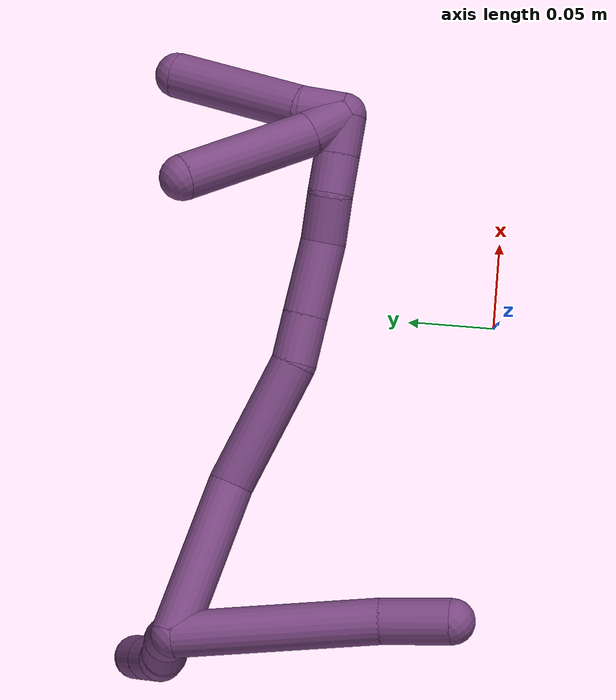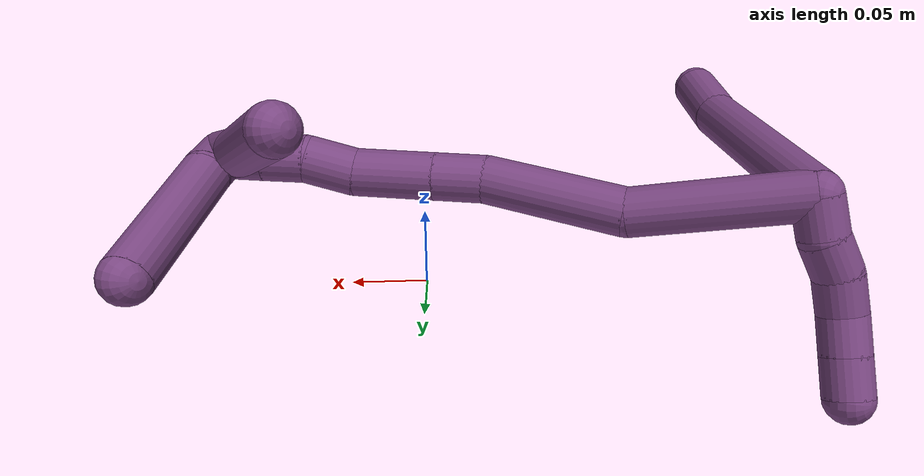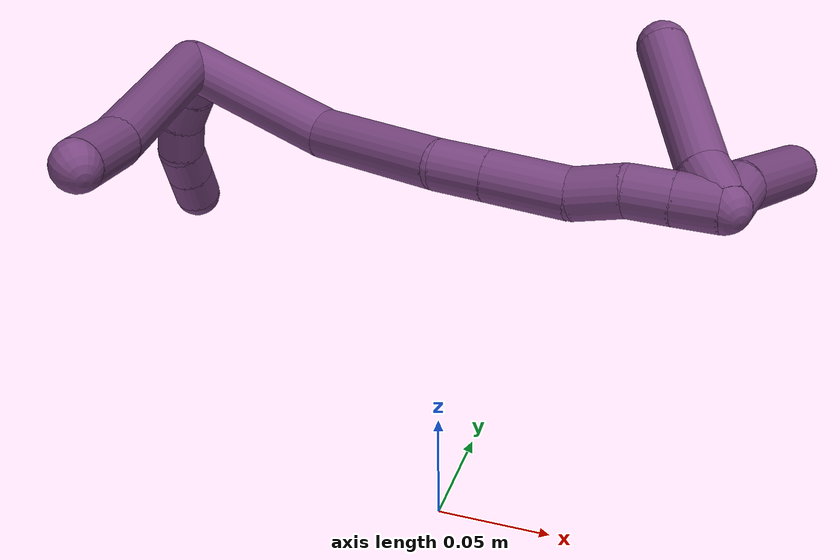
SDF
<sdf version="1.7">
 <world name="default">
  <model name="20">
   <static>0</static>
   <link name="20">
    <collision name="collision-cylinder-e_1_2_8">
     <pose>-0.019908 -0.028581 -0.043591 2.56124 -0.364826 -1.10673</pose>
     <geometry><cylinder><radius>0.0125</radius><length>0.111595</length></cylinder></geometry>
     <surface>
      <friction><ode><mu>1.16</mu><mu2>1.16</mu2><slip1>0</slip1><slip2>0</slip2></ode></friction>
      <contact><ode><kp>1e+06</kp><kd>1</kd><max_vel>0</max_vel><min_depth>0.001</min_depth></ode></contact>
     </surface>
    </collision>
    <visual name="visual-cylinder-e_1_2_8">
     <pose>-0.019908 -0.028581 -0.043591 2.56124 -0.364826 -1.10673</pose>
     <geometry><cylinder><radius>0.0125</radius><length>0.111595</length></cylinder></geometry>
     <material><ambient>0.478431 0.278431 0.509804 1</ambient></material>
    </visual>
    <collision name="collision-cylinder-e_2_8_6">
     <pose>-0.046254 -0.069052 -0.100817 2.4245 -0.341923 -0.863439</pose>
     <geometry><cylinder><radius>0.0125</radius><length>0.038405</length></cylinder></geometry>
     <surface>
      <friction><ode><mu>1.16</mu><mu2>1.16</mu2><slip1>0</slip1><slip2>0</slip2></ode></friction>
      <contact><ode><kp>1e+06</kp><kd>1</kd><max_vel>0</max_vel><min_depth>0.001</min_depth></ode></contact>
     </surface>
    </collision>
    <visual name="visual-cylinder-e_2_8_6">
     <pose>-0.046254 -0.069052 -0.100817 2.4245 -0.341923 -0.863439</pose>
     <geometry><cylinder><radius>0.0125</radius><length>0.038405</length></cylinder></geometry>
     <material><ambient>0.478431 0.278431 0.509804 1</ambient></material>
    </visual>
    <collision name="collision-cylinder-e_1_2_9">
     <pose>-0.005296 0.008374 0.001353 -1.4106 -0.558188 0.478619</pose>
     <geometry><cylinder><radius>0.0125</radius><length>0.02</length></cylinder></geometry>
     <surface>
      <friction><ode><mu>1.16</mu><mu2>1.16</mu2><slip1>0</slip1><slip2>0</slip2></ode></friction>
      <contact><ode><kp>1e+06</kp><kd>1</kd><max_vel>0</max_vel><min_depth>0.001</min_depth></ode></contact>
     </surface>
    </collision>
    <visual name="visual-cylinder-e_1_2_9">
     <pose>-0.005296 0.008374 0.001353 -1.4106 -0.558188 0.478619</pose>
     <geometry><cylinder><radius>0.0125</radius><length>0.02</length></cylinder></geometry>
     <material><ambient>0.478431 0.278431 0.509804 1</ambient></material>
    </visual>
    <collision name="collision-cylinder-e_2_9_10">
     <pose>-0.017965 0.023169 0.004807 -1.25465 -0.828951 0.617564</pose>
     <geometry><cylinder><radius>0.0125</radius><length>0.02</length></cylinder></geometry>
     <surface>
      <friction><ode><mu>1.16</mu><mu2>1.16</mu2><slip1>0</slip1><slip2>0</slip2></ode></friction>
      <contact><ode><kp>1e+06</kp><kd>1</kd><max_vel>0</max_vel><min_depth>0.001</min_depth></ode></contact>
     </surface>
    </collision>
    <visual name="visual-cylinder-e_2_9_10">
     <pose>-0.017965 0.023169 0.004807 -1.25465 -0.828951 0.617564</pose>
     <geometry><cylinder><radius>0.0125</radius><length>0.02</length></cylinder></geometry>
     <material><ambient>0.478431 0.278431 0.509804 1</ambient></material>
    </visual>
    <collision name="collision-cylinder-e_3_10_11">
     <pose>-0.031071 0.037747 0.007678 -1.47656 -0.610553 0.558505</pose>
     <geometry><cylinder><radius>0.0125</radius><length>0.02</length></cylinder></geometry>
     <surface>
      <friction><ode><mu>1.16</mu><mu2>1.16</mu2><slip1>0</slip1><slip2>0</slip2></ode></friction>
      <contact><ode><kp>1e+06</kp><kd>1</kd><max_vel>0</max_vel><min_depth>0.001</min_depth></ode></contact>
     </surface>
    </collision>
    <visual name="visual-cylinder-e_3_10_11">
     <pose>-0.031071 0.037747 0.007678 -1.47656 -0.610553 0.558505</pose>
     <geometry><cylinder><radius>0.0125</radius><length>0.02</length></cylinder></geometry>
     <material><ambient>0.478431 0.278431 0.509804 1</ambient></material>
    </visual>
    <collision name="collision-cylinder-e_4_11_12">
     <pose>-0.039897 0.055267 0.010114 -1.39488 -0.314452 0.264132</pose>
     <geometry><cylinder><radius>0.0125</radius><length>0.02</length></cylinder></geometry>
     <surface>
      <friction><ode><mu>1.16</mu><mu2>1.16</mu2><slip1>0</slip1><slip2>0</slip2></ode></friction>
      <contact><ode><kp>1e+06</kp><kd>1</kd><max_vel>0</max_vel><min_depth>0.001</min_depth></ode></contact>
     </surface>
    </collision>
    <visual name="visual-cylinder-e_4_11_12">
     <pose>-0.039897 0.055267 0.010114 -1.39488 -0.314452 0.264132</pose>
     <geometry><cylinder><radius>0.0125</radius><length>0.02</length></cylinder></geometry>
     <material><ambient>0.478431 0.278431 0.509804 1</ambient></material>
    </visual>
    <collision name="collision-cylinder-e_5_12_5">
     <pose>-0.046076 0.073995 0.013445 -1.39461 -0.313738 0.263458</pose>
     <geometry><cylinder><radius>0.0125</radius><length>0.02</length></cylinder></geometry>
     <surface>
      <friction><ode><mu>1.16</mu><mu2>1.16</mu2><slip1>0</slip1><slip2>0</slip2></ode></friction>
      <contact><ode><kp>1e+06</kp><kd>1</kd><max_vel>0</max_vel><min_depth>0.001</min_depth></ode></contact>
     </surface>
    </collision>
    <visual name="visual-cylinder-e_5_12_5">
     <pose>-0.046076 0.073995 0.013445 -1.39461 -0.313738 0.263458</pose>
     <geometry><cylinder><radius>0.0125</radius><length>0.02</length></cylinder></geometry>
     <material><ambient>0.478431 0.278431 0.509804 1</ambient></material>
    </visual>
    <collision name="collision-cylinder-e_1_2_13">
     <pose>0.01711 0.013476 -0.038194 -2.80239 0.399706 -1.73794</pose>
     <geometry><cylinder><radius>0.0125</radius><length>0.087934</length></cylinder></geometry>
     <surface>
      <friction><ode><mu>1.16</mu><mu2>1.16</mu2><slip1>0</slip1><slip2>0</slip2></ode></friction>
      <contact><ode><kp>1e+06</kp><kd>1</kd><max_vel>0</max_vel><min_depth>0.001</min_depth></ode></contact>
     </surface>
    </collision>
    <visual name="visual-cylinder-e_1_2_13">
     <pose>0.01711 0.013476 -0.038194 -2.80239 0.399706 -1.73794</pose>
     <geometry><cylinder><radius>0.0125</radius><length>0.087934</length></cylinder></geometry>
     <material><ambient>0.478431 0.278431 0.509804 1</ambient></material>
    </visual>
    <collision name="collision-cylinder-e_2_13_14">
     <pose>0.051411 0.026761 -0.10917 3.13576 0.482967 3.1179</pose>
     <geometry><cylinder><radius>0.0125</radius><length>0.074035</length></cylinder></geometry>
     <surface>
      <friction><ode><mu>1.16</mu><mu2>1.16</mu2><slip1>0</slip1><slip2>0</slip2></ode></friction>
      <contact><ode><kp>1e+06</kp><kd>1</kd><max_vel>0</max_vel><min_depth>0.001</min_depth></ode></contact>
     </surface>
    </collision>
    <visual name="visual-cylinder-e_2_13_14">
     <pose>0.051411 0.026761 -0.10917 3.13576 0.482967 3.1179</pose>
     <geometry><cylinder><radius>0.0125</radius><length>0.074035</length></cylinder></geometry>
     <material><ambient>0.478431 0.278431 0.509804 1</ambient></material>
    </visual>
    <collision name="collision-cylinder-e_3_14_15">
     <pose>0.076396 0.029337 -0.152429 -2.88326 0.623574 -2.37541</pose>
     <geometry><cylinder><radius>0.0125</radius><length>0.026693</length></cylinder></geometry>
     <surface>
      <friction><ode><mu>1.16</mu><mu2>1.16</mu2><slip1>0</slip1><slip2>0</slip2></ode></friction>
      <contact><ode><kp>1e+06</kp><kd>1</kd><max_vel>0</max_vel><min_depth>0.001</min_depth></ode></contact>
     </surface>
    </collision>
    <visual name="visual-cylinder-e_3_14_15">
     <pose>0.076396 0.029337 -0.152429 -2.88326 0.623574 -2.37541</pose>
     <geometry><cylinder><radius>0.0125</radius><length>0.026693</length></cylinder></geometry>
     <material><ambient>0.478431 0.278431 0.509804 1</ambient></material>
    </visual>
    <collision name="collision-cylinder-e_4_15_16">
     <pose>0.096222 0.036383 -0.179228 -2.88532 0.619451 -2.37611</pose>
     <geometry><cylinder><radius>0.0125</radius><length>0.041452</length></cylinder></geometry>
     <surface>
      <friction><ode><mu>1.16</mu><mu2>1.16</mu2><slip1>0</slip1><slip2>0</slip2></ode></friction>
      <contact><ode><kp>1e+06</kp><kd>1</kd><max_vel>0</max_vel><min_depth>0.001</min_depth></ode></contact>
     </surface>
    </collision>
    <visual name="visual-cylinder-e_4_15_16">
     <pose>0.096222 0.036383 -0.179228 -2.88532 0.619451 -2.37611</pose>
     <geometry><cylinder><radius>0.0125</radius><length>0.041452</length></cylinder></geometry>
     <material><ambient>0.478431 0.278431 0.509804 1</ambient></material>
    </visual>
    <collision name="collision-cylinder-e_5_16_17">
     <pose>0.117969 0.041176 -0.204207 -3.08211 0.842047 -3.00891</pose>
     <geometry><cylinder><radius>0.0125</radius><length>0.026042</length></cylinder></geometry>
     <surface>
      <friction><ode><mu>1.16</mu><mu2>1.16</mu2><slip1>0</slip1><slip2>0</slip2></ode></friction>
      <contact><ode><kp>1e+06</kp><kd>1</kd><max_vel>0</max_vel><min_depth>0.001</min_depth></ode></contact>
     </surface>
    </collision>
    <visual name="visual-cylinder-e_5_16_17">
     <pose>0.117969 0.041176 -0.204207 -3.08211 0.842047 -3.00891</pose>
     <geometry><cylinder><radius>0.0125</radius><length>0.026042</length></cylinder></geometry>
     <material><ambient>0.478431 0.278431 0.509804 1</ambient></material>
    </visual>
    <collision name="collision-cylinder-e_6_17_18">
     <pose>0.134567 0.044249 -0.221011 -2.83736 0.678452 -2.3219</pose>
     <geometry><cylinder><radius>0.0125</radius><length>0.021939</length></cylinder></geometry>
     <surface>
      <friction><ode><mu>1.16</mu><mu2>1.16</mu2><slip1>0</slip1><slip2>0</slip2></ode></friction>
      <contact><ode><kp>1e+06</kp><kd>1</kd><max_vel>0</max_vel><min_depth>0.001</min_depth></ode></contact>
     </surface>
    </collision>
    <visual name="visual-cylinder-e_6_17_18">
     <pose>0.134567 0.044249 -0.221011 -2.83736 0.678452 -2.3219</pose>
     <geometry><cylinder><radius>0.0125</radius><length>0.021939</length></cylinder></geometry>
     <material><ambient>0.478431 0.278431 0.509804 1</ambient></material>
    </visual>
    <collision name="collision-cylinder-e_7_18_1">
     <pose>0.148391 0.049288 -0.237262 -2.84456 0.686143 -2.34826</pose>
     <geometry><cylinder><radius>0.0125</radius><length>0.021905</length></cylinder></geometry>
     <surface>
      <friction><ode><mu>1.16</mu><mu2>1.16</mu2><slip1>0</slip1><slip2>0</slip2></ode></friction>
      <contact><ode><kp>1e+06</kp><kd>1</kd><max_vel>0</max_vel><min_depth>0.001</min_depth></ode></contact>
     </surface>
    </collision>
    <visual name="visual-cylinder-e_7_18_1">
     <pose>0.148391 0.049288 -0.237262 -2.84456 0.686143 -2.34826</pose>
     <geometry><cylinder><radius>0.0125</radius><length>0.021905</length></cylinder></geometry>
     <material><ambient>0.478431 0.278431 0.509804 1</ambient></material>
    </visual>
    <collision name="collision-cylinder-e_1_1_19">
     <pose>0.161658 0.05906 -0.237987 -0.779529 0.547787 -0.229804</pose>
     <geometry><cylinder><radius>0.0125</radius><length>0.024302</length></cylinder></geometry>
     <surface>
      <friction><ode><mu>1.16</mu><mu2>1.16</mu2><slip1>0</slip1><slip2>0</slip2></ode></friction>
      <contact><ode><kp>1e+06</kp><kd>1</kd><max_vel>0</max_vel><min_depth>0.001</min_depth></ode></contact>
     </surface>
    </collision>
    <visual name="visual-cylinder-e_1_1_19">
     <pose>0.161658 0.05906 -0.237987 -0.779529 0.547787 -0.229804</pose>
     <geometry><cylinder><radius>0.0125</radius><length>0.024302</length></cylinder></geometry>
     <material><ambient>0.478431 0.278431 0.509804 1</ambient></material>
    </visual>
    <collision name="collision-cylinder-e_2_19_4">
     <pose>0.184901 0.095783 -0.213869 -1.05364 0.463288 -0.272697</pose>
     <geometry><cylinder><radius>0.0125</radius><length>0.075698</length></cylinder></geometry>
     <surface>
      <friction><ode><mu>1.16</mu><mu2>1.16</mu2><slip1>0</slip1><slip2>0</slip2></ode></friction>
      <contact><ode><kp>1e+06</kp><kd>1</kd><max_vel>0</max_vel><min_depth>0.001</min_depth></ode></contact>
     </surface>
    </collision>
    <visual name="visual-cylinder-e_2_19_4">
     <pose>0.184901 0.095783 -0.213869 -1.05364 0.463288 -0.272697</pose>
     <geometry><cylinder><radius>0.0125</radius><length>0.075698</length></cylinder></geometry>
     <material><ambient>0.478431 0.278431 0.509804 1</ambient></material>
    </visual>
    <collision name="collision-cylinder-e_1_1_20">
     <pose>0.157544 0.051554 -0.23383 0.018598 0.18962 0.001769</pose>
     <geometry><cylinder><radius>0.0125</radius><length>0.023494</length></cylinder></geometry>
     <surface>
      <friction><ode><mu>1.16</mu><mu2>1.16</mu2><slip1>0</slip1><slip2>0</slip2></ode></friction>
      <contact><ode><kp>1e+06</kp><kd>1</kd><max_vel>0</max_vel><min_depth>0.001</min_depth></ode></contact>
     </surface>
    </collision>
    <visual name="visual-cylinder-e_1_1_20">
     <pose>0.157544 0.051554 -0.23383 0.018598 0.18962 0.001769</pose>
     <geometry><cylinder><radius>0.0125</radius><length>0.023494</length></cylinder></geometry>
     <material><ambient>0.478431 0.278431 0.509804 1</ambient></material>
    </visual>
    <collision name="collision-cylinder-e_2_20_3">
     <pose>0.172997 0.050383 -0.18642 0.026642 0.3534 0.004757</pose>
     <geometry><cylinder><radius>0.0125</radius><length>0.076506</length></cylinder></geometry>
     <surface>
      <friction><ode><mu>1.16</mu><mu2>1.16</mu2><slip1>0</slip1><slip2>0</slip2></ode></friction>
      <contact><ode><kp>1e+06</kp><kd>1</kd><max_vel>0</max_vel><min_depth>0.001</min_depth></ode></contact>
     </surface>
    </collision>
    <visual name="visual-cylinder-e_2_20_3">
     <pose>0.172997 0.050383 -0.18642 0.026642 0.3534 0.004757</pose>
     <geometry><cylinder><radius>0.0125</radius><length>0.076506</length></cylinder></geometry>
     <material><ambient>0.478431 0.278431 0.509804 1</ambient></material>
    </visual>
    <collision name="collision-sphere-3">
     <pose>0.186236 0.049427 -0.150543 0 -0 0</pose>
     <geometry><sphere><radius>0.0125</radius></sphere></geometry>
     <surface>
      <friction><ode><mu>1.16</mu><mu2>1.16</mu2><slip1>0</slip1><slip2>0</slip2></ode></friction>
      <contact><ode><kp>1e+06</kp><kd>1</kd><max_vel>0</max_vel><min_depth>0.001</min_depth></ode></contact>
     </surface>
    </collision>
    <visual name="visual-sphere-3">
     <pose>0.186236 0.049427 -0.150543 0 -0 0</pose>
     <geometry><sphere><radius>0.0125</radius></sphere></geometry>
     <material><ambient>0.478431 0.278431 0.509804 1</ambient></material>
    </visual>
    <collision name="collision-sphere-20">
     <pose>0.159758 0.051339 -0.222296 0 -0 0</pose>
     <geometry><sphere><radius>0.0125</radius></sphere></geometry>
     <surface>
      <friction><ode><mu>1.16</mu><mu2>1.16</mu2><slip1>0</slip1><slip2>0</slip2></ode></friction>
      <contact><ode><kp>1e+06</kp><kd>1</kd><max_vel>0</max_vel><min_depth>0.001</min_depth></ode></contact>
     </surface>
    </collision>
    <visual name="visual-sphere-20">
     <pose>0.159758 0.051339 -0.222296 0 -0 0</pose>
     <geometry><sphere><radius>0.0125</radius></sphere></geometry>
     <material><ambient>0.478431 0.278431 0.509804 1</ambient></material>
    </visual>
    <collision name="collision-sphere-4">
     <pose>0.201815 0.125214 -0.197129 0 -0 0</pose>
     <geometry><sphere><radius>0.0125</radius></sphere></geometry>
     <surface>
      <friction><ode><mu>1.16</mu><mu2>1.16</mu2><slip1>0</slip1><slip2>0</slip2></ode></friction>
      <contact><ode><kp>1e+06</kp><kd>1</kd><max_vel>0</max_vel><min_depth>0.001</min_depth></ode></contact>
     </surface>
    </collision>
    <visual name="visual-sphere-4">
     <pose>0.201815 0.125214 -0.197129 0 -0 0</pose>
     <geometry><sphere><radius>0.0125</radius></sphere></geometry>
     <material><ambient>0.478431 0.278431 0.509804 1</ambient></material>
    </visual>
    <collision name="collision-sphere-11">
     <pose>-0.036804 0.045904 0.008449 0 -0 0</pose>
     <geometry><sphere><radius>0.0125</radius></sphere></geometry>
     <surface>
      <friction><ode><mu>1.16</mu><mu2>1.16</mu2><slip1>0</slip1><slip2>0</slip2></ode></friction>
      <contact><ode><kp>1e+06</kp><kd>1</kd><max_vel>0</max_vel><min_depth>0.001</min_depth></ode></contact>
     </surface>
    </collision>
    <visual name="visual-sphere-11">
     <pose>-0.036804 0.045904 0.008449 0 -0 0</pose>
     <geometry><sphere><radius>0.0125</radius></sphere></geometry>
     <material><ambient>0.478431 0.278431 0.509804 1</ambient></material>
    </visual>
    <collision name="collision-sphere-10">
     <pose>-0.025337 0.02959 0.006907 0 -0 0</pose>
     <geometry><sphere><radius>0.0125</radius></sphere></geometry>
     <surface>
      <friction><ode><mu>1.16</mu><mu2>1.16</mu2><slip1>0</slip1><slip2>0</slip2></ode></friction>
      <contact><ode><kp>1e+06</kp><kd>1</kd><max_vel>0</max_vel><min_depth>0.001</min_depth></ode></contact>
     </surface>
    </collision>
    <visual name="visual-sphere-10">
     <pose>-0.025337 0.02959 0.006907 0 -0 0</pose>
     <geometry><sphere><radius>0.0125</radius></sphere></geometry>
     <material><ambient>0.478431 0.278431 0.509804 1</ambient></material>
    </visual>
    <collision name="collision-sphere-6">
     <pose>-0.052693 -0.080941 -0.114452 0 -0 0</pose>
     <geometry><sphere><radius>0.0125</radius></sphere></geometry>
     <surface>
      <friction><ode><mu>1.16</mu><mu2>1.16</mu2><slip1>0</slip1><slip2>0</slip2></ode></friction>
      <contact><ode><kp>1e+06</kp><kd>1</kd><max_vel>0</max_vel><min_depth>0.001</min_depth></ode></contact>
     </surface>
    </collision>
    <visual name="visual-sphere-6">
     <pose>-0.052693 -0.080941 -0.114452 0 -0 0</pose>
     <geometry><sphere><radius>0.0125</radius></sphere></geometry>
     <material><ambient>0.478431 0.278431 0.509804 1</ambient></material>
    </visual>
    <collision name="collision-sphere-9">
     <pose>-0.010593 0.016747 0.002706 0 -0 0</pose>
     <geometry><sphere><radius>0.0125</radius></sphere></geometry>
     <surface>
      <friction><ode><mu>1.16</mu><mu2>1.16</mu2><slip1>0</slip1><slip2>0</slip2></ode></friction>
      <contact><ode><kp>1e+06</kp><kd>1</kd><max_vel>0</max_vel><min_depth>0.001</min_depth></ode></contact>
     </surface>
    </collision>
    <visual name="visual-sphere-9">
     <pose>-0.010593 0.016747 0.002706 0 -0 0</pose>
     <geometry><sphere><radius>0.0125</radius></sphere></geometry>
     <material><ambient>0.478431 0.278431 0.509804 1</ambient></material>
    </visual>
    <collision name="collision-sphere-2">
     <geometry><sphere><radius>0.0125</radius></sphere></geometry>
     <surface>
      <friction><ode><mu>1.16</mu><mu2>1.16</mu2><slip1>0</slip1><slip2>0</slip2></ode></friction>
      <contact><ode><kp>1e+06</kp><kd>1</kd><max_vel>0</max_vel><min_depth>0.001</min_depth></ode></contact>
     </surface>
    </collision>
    <visual name="visual-sphere-2">
     <geometry><sphere><radius>0.0125</radius></sphere></geometry>
     <material><ambient>0.478431 0.278431 0.509804 1</ambient></material>
    </visual>
    <collision name="collision-sphere-19">
     <pose>0.167986 0.066352 -0.230609 0 -0 0</pose>
     <geometry><sphere><radius>0.0125</radius></sphere></geometry>
     <surface>
      <friction><ode><mu>1.16</mu><mu2>1.16</mu2><slip1>0</slip1><slip2>0</slip2></ode></friction>
      <contact><ode><kp>1e+06</kp><kd>1</kd><max_vel>0</max_vel><min_depth>0.001</min_depth></ode></contact>
     </surface>
    </collision>
    <visual name="visual-sphere-19">
     <pose>0.167986 0.066352 -0.230609 0 -0 0</pose>
     <geometry><sphere><radius>0.0125</radius></sphere></geometry>
     <material><ambient>0.478431 0.278431 0.509804 1</ambient></material>
    </visual>
    <collision name="collision-sphere-8">
     <pose>-0.039816 -0.057163 -0.087181 0 -0 0</pose>
     <geometry><sphere><radius>0.0125</radius></sphere></geometry>
     <surface>
      <friction><ode><mu>1.16</mu><mu2>1.16</mu2><slip1>0</slip1><slip2>0</slip2></ode></friction>
      <contact><ode><kp>1e+06</kp><kd>1</kd><max_vel>0</max_vel><min_depth>0.001</min_depth></ode></contact>
     </surface>
    </collision>
    <visual name="visual-sphere-8">
     <pose>-0.039816 -0.057163 -0.087181 0 -0 0</pose>
     <geometry><sphere><radius>0.0125</radius></sphere></geometry>
     <material><ambient>0.478431 0.278431 0.509804 1</ambient></material>
    </visual>
    <collision name="collision-sphere-12">
     <pose>-0.04299 0.06463 0.011778 0 -0 0</pose>
     <geometry><sphere><radius>0.0125</radius></sphere></geometry>
     <surface>
      <friction><ode><mu>1.16</mu><mu2>1.16</mu2><slip1>0</slip1><slip2>0</slip2></ode></friction>
      <contact><ode><kp>1e+06</kp><kd>1</kd><max_vel>0</max_vel><min_depth>0.001</min_depth></ode></contact>
     </surface>
    </collision>
    <visual name="visual-sphere-12">
     <pose>-0.04299 0.06463 0.011778 0 -0 0</pose>
     <geometry><sphere><radius>0.0125</radius></sphere></geometry>
     <material><ambient>0.478431 0.278431 0.509804 1</ambient></material>
    </visual>
    <collision name="collision-sphere-5">
     <pose>-0.049162 0.083359 0.015112 0 -0 0</pose>
     <geometry><sphere><radius>0.0125</radius></sphere></geometry>
     <surface>
      <friction><ode><mu>1.16</mu><mu2>1.16</mu2><slip1>0</slip1><slip2>0</slip2></ode></friction>
      <contact><ode><kp>1e+06</kp><kd>1</kd><max_vel>0</max_vel><min_depth>0.001</min_depth></ode></contact>
     </surface>
    </collision>
    <visual name="visual-sphere-5">
     <pose>-0.049162 0.083359 0.015112 0 -0 0</pose>
     <geometry><sphere><radius>0.0125</radius></sphere></geometry>
     <material><ambient>0.478431 0.278431 0.509804 1</ambient></material>
    </visual>
    <collision name="collision-sphere-13">
     <pose>0.034219 0.026952 -0.076387 0 -0 0</pose>
     <geometry><sphere><radius>0.0125</radius></sphere></geometry>
     <surface>
      <friction><ode><mu>1.16</mu><mu2>1.16</mu2><slip1>0</slip1><slip2>0</slip2></ode></friction>
      <contact><ode><kp>1e+06</kp><kd>1</kd><max_vel>0</max_vel><min_depth>0.001</min_depth></ode></contact>
     </surface>
    </collision>
    <visual name="visual-sphere-13">
     <pose>0.034219 0.026952 -0.076387 0 -0 0</pose>
     <geometry><sphere><radius>0.0125</radius></sphere></geometry>
     <material><ambient>0.478431 0.278431 0.509804 1</ambient></material>
    </visual>
    <collision name="collision-sphere-14">
     <pose>0.068602 0.02657 -0.141953 0 -0 0</pose>
     <geometry><sphere><radius>0.0125</radius></sphere></geometry>
     <surface>
      <friction><ode><mu>1.16</mu><mu2>1.16</mu2><slip1>0</slip1><slip2>0</slip2></ode></friction>
      <contact><ode><kp>1e+06</kp><kd>1</kd><max_vel>0</max_vel><min_depth>0.001</min_depth></ode></contact>
     </surface>
    </collision>
    <visual name="visual-sphere-14">
     <pose>0.068602 0.02657 -0.141953 0 -0 0</pose>
     <geometry><sphere><radius>0.0125</radius></sphere></geometry>
     <material><ambient>0.478431 0.278431 0.509804 1</ambient></material>
    </visual>
    <collision name="collision-sphere-15">
     <pose>0.084189 0.032105 -0.162904 0 -0 0</pose>
     <geometry><sphere><radius>0.0125</radius></sphere></geometry>
     <surface>
      <friction><ode><mu>1.16</mu><mu2>1.16</mu2><slip1>0</slip1><slip2>0</slip2></ode></friction>
      <contact><ode><kp>1e+06</kp><kd>1</kd><max_vel>0</max_vel><min_depth>0.001</min_depth></ode></contact>
     </surface>
    </collision>
    <visual name="visual-sphere-15">
     <pose>0.084189 0.032105 -0.162904 0 -0 0</pose>
     <geometry><sphere><radius>0.0125</radius></sphere></geometry>
     <material><ambient>0.478431 0.278431 0.509804 1</ambient></material>
    </visual>
    <collision name="collision-sphere-16">
     <pose>0.108256 0.04066 -0.195552 0 -0 0</pose>
     <geometry><sphere><radius>0.0125</radius></sphere></geometry>
     <surface>
      <friction><ode><mu>1.16</mu><mu2>1.16</mu2><slip1>0</slip1><slip2>0</slip2></ode></friction>
      <contact><ode><kp>1e+06</kp><kd>1</kd><max_vel>0</max_vel><min_depth>0.001</min_depth></ode></contact>
     </surface>
    </collision>
    <visual name="visual-sphere-16">
     <pose>0.108256 0.04066 -0.195552 0 -0 0</pose>
     <geometry><sphere><radius>0.0125</radius></sphere></geometry>
     <material><ambient>0.478431 0.278431 0.509804 1</ambient></material>
    </visual>
    <collision name="collision-sphere-17">
     <pose>0.127683 0.041691 -0.212863 0 -0 0</pose>
     <geometry><sphere><radius>0.0125</radius></sphere></geometry>
     <surface>
      <friction><ode><mu>1.16</mu><mu2>1.16</mu2><slip1>0</slip1><slip2>0</slip2></ode></friction>
      <contact><ode><kp>1e+06</kp><kd>1</kd><max_vel>0</max_vel><min_depth>0.001</min_depth></ode></contact>
     </surface>
    </collision>
    <visual name="visual-sphere-17">
     <pose>0.127683 0.041691 -0.212863 0 -0 0</pose>
     <geometry><sphere><radius>0.0125</radius></sphere></geometry>
     <material><ambient>0.478431 0.278431 0.509804 1</ambient></material>
    </visual>
    <collision name="collision-sphere-18">
     <pose>0.141452 0.046808 -0.229159 0 -0 0</pose>
     <geometry><sphere><radius>0.0125</radius></sphere></geometry>
     <surface>
      <friction><ode><mu>1.16</mu><mu2>1.16</mu2><slip1>0</slip1><slip2>0</slip2></ode></friction>
      <contact><ode><kp>1e+06</kp><kd>1</kd><max_vel>0</max_vel><min_depth>0.001</min_depth></ode></contact>
     </surface>
    </collision>
    <visual name="visual-sphere-18">
     <pose>0.141452 0.046808 -0.229159 0 -0 0</pose>
     <geometry><sphere><radius>0.0125</radius></sphere></geometry>
     <material><ambient>0.478431 0.278431 0.509804 1</ambient></material>
    </visual>
    <collision name="collision-sphere-1">
     <pose>0.15533 0.051768 -0.245365 0 -0 0</pose>
     <geometry><sphere><radius>0.0125</radius></sphere></geometry>
     <surface>
      <friction><ode><mu>1.16</mu><mu2>1.16</mu2><slip1>0</slip1><slip2>0</slip2></ode></friction>
      <contact><ode><kp>1e+06</kp><kd>1</kd><max_vel>0</max_vel><min_depth>0.001</min_depth></ode></contact>
     </surface>
    </collision>
    <visual name="visual-sphere-1">
     <pose>0.15533 0.051768 -0.245365 0 -0 0</pose>
     <geometry><sphere><radius>0.0125</radius></sphere></geometry>
     <material><ambient>0.478431 0.278431 0.509804 1</ambient></material>
    </visual>
    <inertial>
     <pose>0.064895 0.027282 -0.11736 0 -0 0</pose>
     <mass>0.75</mass>
     <inertia><ixx>-8e-05</ixx><ixy>0</ixy><ixz>0</ixz><iyy>-5.3e-05</iyy><iyz>0</iyz><izz>-4.3e-05</izz></inertia>
    </inertial>
   </link>
   <pose>-0.188211 0.165923 0.113835 -1.38565 -0.574244 0.66811</pose>
  </model>
 </world>
</sdf>
